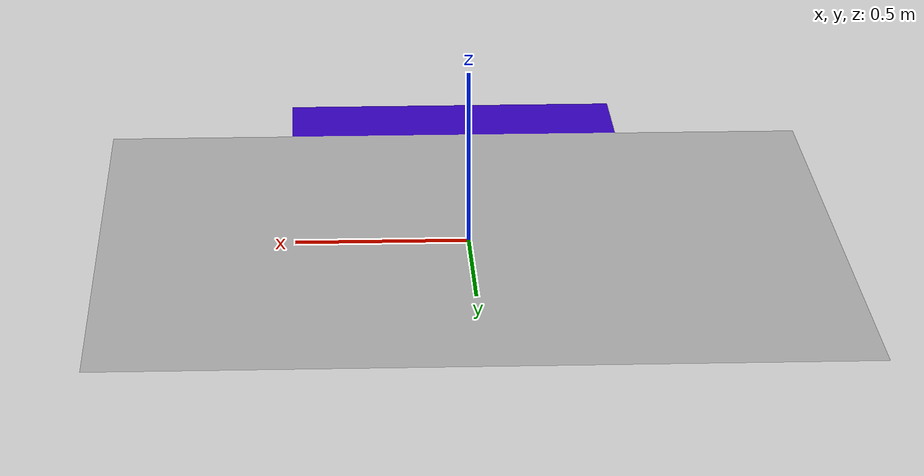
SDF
<?xml version="1.0"?>
<sdf version="1.6">
  <world name="default">
    <scene>
      <shadows>false</shadows>
      <grid>false</grid>
      <origin_visual>false</origin_visual>
      <sky>
        <clouds>
          <speed>4</speed>
        </clouds>
      </sky>
    </scene>
    <include>
      <uri>model://sun</uri>
    </include>
    <include>
      <uri>model://flipkart_round_2_arena</uri>
      <static>true</static>
      <pose>0 0 0 0 0 0</pose>
    </include>

    <physics type='ode'>
    <max_step_size>0.001</max_step_size>
    <real_time_factor>1</real_time_factor>
    <real_time_update_rate>1000.000</real_time_update_rate>
    <gravity>0 0 -9.8</gravity>
    </physics>
  </world>
</sdf>

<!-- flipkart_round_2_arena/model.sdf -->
<sdf version="1.4">
  <model name="Flipkart_round2_Arena">
    <link name="link">
      <inertial>
        <mass>15</mass>
      </inertial>
      <collision name="collision">
        <pose>0 0 0 0 0 -1.57</pose>
        <geometry>
          <mesh>
            <uri>model://flipkart_round_2_arena/dae/arena.dae</uri>
          </mesh>
        </geometry>
      </collision>
      <visual name="visual">
        <pose>0 0 0 0 0 -1.57</pose>
        <geometry>
          <mesh>
            <uri>model://flipkart_round_2_arena/dae/arena.dae</uri>
          </mesh>
        </geometry>
      </visual>
    </link>

    <static>1</static>
  </model>
</sdf>
